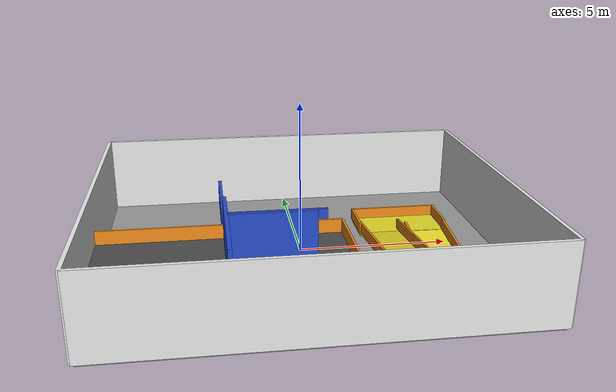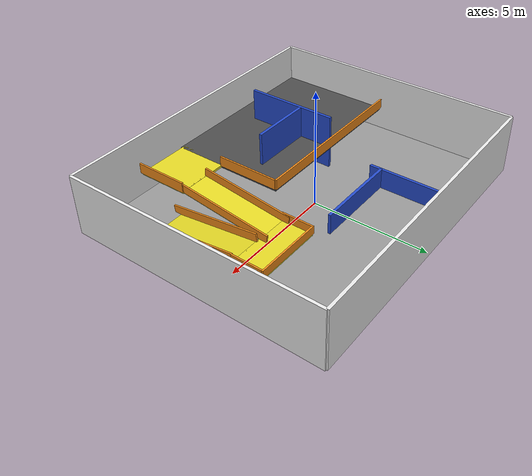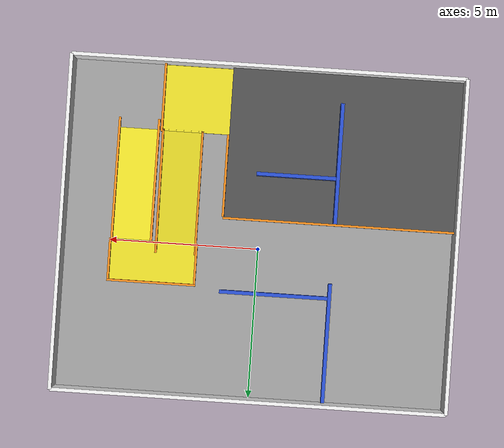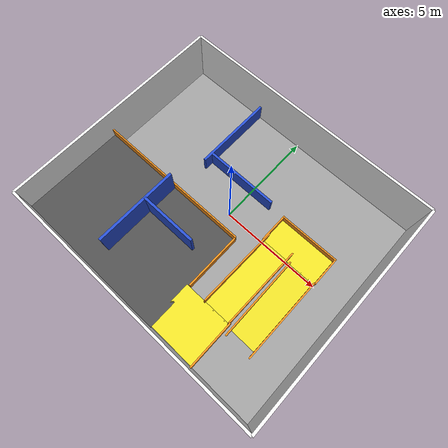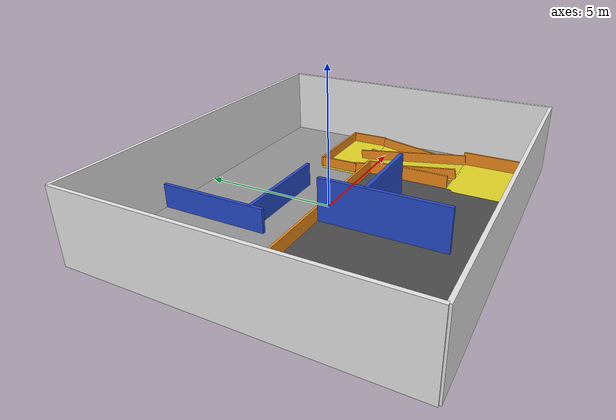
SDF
<sdf version="1.7">
 <world name="two_floor">
  <plugin name="gazebo_ros_state" filename="libgazebo_ros_state.so">
   <ros><namespace>/gazebo</namespace></ros>
  </plugin>
  <gravity>0 0 -9.8</gravity>
  <physics name="ode_physics" type="ode">
   <max_step_size>0.001</max_step_size>
   <real_time_factor>1.0</real_time_factor>
   <real_time_update_rate>1000</real_time_update_rate>
   <ode>
    <solver><type>quick</type><iters>100</iters><sor>1.3</sor></solver>
    <constraints>
     <cfm>0.0</cfm>
     <erp>0.2</erp>
     <contact_max_correcting_vel>10.0</contact_max_correcting_vel>
     <contact_surface_layer>0.001</contact_surface_layer>
    </constraints>
   </ode>
  </physics>
  <scene>
   <ambient>0.48 0.48 0.5 1</ambient>
   <background>0.73 0.77 0.82 1</background>
   <shadows>true</shadows>
  </scene>
  <light name="sun" type="directional">
   <pose>0 0 10 0 0 0</pose>
   <diffuse>0.85 0.85 0.85 1</diffuse>
   <specular>0.2 0.2 0.2 1</specular>
   <direction>-0.45 0.25 -0.86</direction>
   <attenuation>
    <range>1000</range>
    <constant>0.9</constant>
    <linear>0.01</linear>
    <quadratic>0.001</quadratic>
   </attenuation>
  </light>
  <light name="lower_floor_fill" type="point">
   <pose>-2.5 0 0.7 0 0 0</pose>
   <cast_shadows>false</cast_shadows>
   <diffuse>0.55 0.58 0.62 1</diffuse>
   <attenuation>
    <range>12</range>
    <constant>0.5</constant>
    <linear>0.08</linear>
    <quadratic>0.01</quadratic>
   </attenuation>
  </light>
  <light name="upper_floor_fill" type="point">
   <pose>-2.5 -3.5 2.4 0 0 0</pose>
   <cast_shadows>false</cast_shadows>
   <diffuse>0.65 0.67 0.7 1</diffuse>
   <attenuation>
    <range>14</range>
    <constant>0.5</constant>
    <linear>0.07</linear>
    <quadratic>0.01</quadratic>
   </attenuation>
  </light>
  <model name="two_floor_structure">
   <static>true</static>
   <link name="structure_link">
    <collision name="ground_floor_collision">
     <pose>0 -0.5 -0.05 0 0 0</pose>
     <geometry><box><size>13 11 0.1</size></box></geometry>
     <surface><friction><ode><mu>2.0</mu><mu2>2.0</mu2></ode></friction></surface>
    </collision>
    <visual name="ground_floor_visual">
     <pose>0 -0.5 -0.05 0 0 0</pose>
     <geometry><box><size>13 11 0.1</size></box></geometry>
     <material>
      <script><uri>file://media/materials/scripts/gazebo.material</uri><name>Gazebo/Grey</name></script>
     </material>
    </visual>
    <collision name="outer_west_collision">
     <pose>-6.56 -0.5 1.3 0 0 0</pose>
     <geometry><box><size>0.12 11.12 2.6</size></box></geometry>
    </collision>
    <visual name="outer_west_visual">
     <pose>-6.56 -0.5 1.3 0 0 0</pose>
     <geometry><box><size>0.12 11.12 2.6</size></box></geometry>
     <material>
      <script><uri>file://media/materials/scripts/gazebo.material</uri><name>Gazebo/White</name></script>
     </material>
    </visual>
    <collision name="outer_east_collision">
     <pose>6.56 -0.5 1.3 0 0 0</pose>
     <geometry><box><size>0.12 11.12 2.6</size></box></geometry>
    </collision>
    <visual name="outer_east_visual">
     <pose>6.56 -0.5 1.3 0 0 0</pose>
     <geometry><box><size>0.12 11.12 2.6</size></box></geometry>
     <material>
      <script><uri>file://media/materials/scripts/gazebo.material</uri><name>Gazebo/White</name></script>
     </material>
    </visual>
    <collision name="outer_south_collision">
     <pose>0 -6.06 1.3 0 0 0</pose>
     <geometry><box><size>13.12 0.12 2.6</size></box></geometry>
    </collision>
    <visual name="outer_south_visual">
     <pose>0 -6.06 1.3 0 0 0</pose>
     <geometry><box><size>13.12 0.12 2.6</size></box></geometry>
     <material>
      <script><uri>file://media/materials/scripts/gazebo.material</uri><name>Gazebo/White</name></script>
     </material>
    </visual>
    <collision name="outer_north_collision">
     <pose>0 5.06 1.3 0 0 0</pose>
     <geometry><box><size>13.12 0.12 2.6</size></box></geometry>
    </collision>
    <visual name="outer_north_visual">
     <pose>0 5.06 1.3 0 0 0</pose>
     <geometry><box><size>13.12 0.12 2.6</size></box></geometry>
     <material>
      <script><uri>file://media/materials/scripts/gazebo.material</uri><name>Gazebo/White</name></script>
     </material>
    </visual>
    <collision name="upper_floor_collision">
     <pose>-2.65 -3.5 0.94 0 0 0</pose>
     <geometry><box><size>7.7 5.0 0.12</size></box></geometry>
     <surface><friction><ode><mu>2.0</mu><mu2>2.0</mu2></ode></friction></surface>
    </collision>
    <visual name="upper_floor_visual">
     <pose>-2.65 -3.5 0.94 0 0 0</pose>
     <geometry><box><size>7.7 5.0 0.12</size></box></geometry>
     <material>
      <script><uri>file://media/materials/scripts/gazebo.material</uri><name>Gazebo/DarkGrey</name></script>
     </material>
    </visual>
    <collision name="upper_landing_collision">
     <pose>2.235 -4.85 0.95 0 0 0</pose>
     <geometry><box><size>2.37 2.20 0.1</size></box></geometry>
     <surface><friction><ode><mu>4.0</mu><mu2>4.0</mu2></ode></friction></surface>
    </collision>
    <visual name="upper_landing_visual">
     <pose>2.235 -4.85 0.95 0 0 0</pose>
     <geometry><box><size>2.37 2.20 0.1</size></box></geometry>
     <material>
      <script><uri>file://media/materials/scripts/gazebo.material</uri><name>Gazebo/Yellow</name></script>
     </material>
    </visual>
    <collision name="ramp_1_collision">
     <pose>4.25 -2.0435 0.1807 0.1309 0 0</pose>
     <geometry><box><size>1.25 4.1354 0.1</size></box></geometry>
     <surface>
      <contact><ode><kp>1000000</kp><kd>100</kd><min_depth>0.001</min_depth><max_vel>0.1</max_vel></ode></contact>
      <friction><ode><mu>8.0</mu><mu2>8.0</mu2></ode></friction>
     </surface>
    </collision>
    <visual name="ramp_1_visual">
     <pose>4.25 -2.0435 0.1807 0.1309 0 0</pose>
     <geometry><box><size>1.25 4.1354 0.1</size></box></geometry>
     <material>
      <script><uri>file://media/materials/scripts/gazebo.material</uri><name>Gazebo/Yellow</name></script>
     </material>
    </visual>
    <collision name="ramp_2_collision">
     <pose>2.75 -1.7565 0.6807 -0.1309 0 0</pose>
     <geometry><box><size>1.25 4.1354 0.1</size></box></geometry>
     <surface>
      <contact><ode><kp>1000000</kp><kd>100</kd><min_depth>0.001</min_depth><max_vel>0.1</max_vel></ode></contact>
      <friction><ode><mu>8.0</mu><mu2>8.0</mu2></ode></friction>
     </surface>
    </collision>
    <visual name="ramp_2_visual">
     <pose>2.75 -1.7565 0.6807 -0.1309 0 0</pose>
     <geometry><box><size>1.25 4.1354 0.1</size></box></geometry>
     <material>
      <script><uri>file://media/materials/scripts/gazebo.material</uri><name>Gazebo/Yellow</name></script>
     </material>
    </visual>
    <collision name="middle_landing_collision">
     <pose>3.5 0.65 0.45 0 0 0</pose>
     <geometry><box><size>2.9 1.4 0.1</size></box></geometry>
     <surface><friction><ode><mu>4.0</mu><mu2>4.0</mu2></ode></friction></surface>
    </collision>
    <visual name="middle_landing_visual">
     <pose>3.5 0.65 0.45 0 0 0</pose>
     <geometry><box><size>2.9 1.4 0.1</size></box></geometry>
     <material>
      <script><uri>file://media/materials/scripts/gazebo.material</uri><name>Gazebo/Yellow</name></script>
     </material>
    </visual>
    <collision name="ramp_1_west_rail_collision">
     <pose>3.59 -2.066 0.4038 0.1309 0 0</pose>
     <geometry><box><size>0.07 4.1354 0.35</size></box></geometry>
    </collision>
    <visual name="ramp_1_west_rail_visual">
     <pose>3.59 -2.066 0.4038 0.1309 0 0</pose>
     <geometry><box><size>0.07 4.1354 0.35</size></box></geometry>
     <material>
      <script><uri>file://media/materials/scripts/gazebo.material</uri><name>Gazebo/Orange</name></script>
     </material>
    </visual>
    <collision name="ramp_1_east_rail_collision">
     <pose>4.91 -2.066 0.4038 0.1309 0 0</pose>
     <geometry><box><size>0.07 4.1354 0.35</size></box></geometry>
    </collision>
    <visual name="ramp_1_east_rail_visual">
     <pose>4.91 -2.066 0.4038 0.1309 0 0</pose>
     <geometry><box><size>0.07 4.1354 0.35</size></box></geometry>
     <material>
      <script><uri>file://media/materials/scripts/gazebo.material</uri><name>Gazebo/Orange</name></script>
     </material>
    </visual>
    <collision name="ramp_2_west_rail_collision">
     <pose>2.09 -1.734 0.9038 -0.1309 0 0</pose>
     <geometry><box><size>0.07 4.1354 0.35</size></box></geometry>
    </collision>
    <visual name="ramp_2_west_rail_visual">
     <pose>2.09 -1.734 0.9038 -0.1309 0 0</pose>
     <geometry><box><size>0.07 4.1354 0.35</size></box></geometry>
     <material>
      <script><uri>file://media/materials/scripts/gazebo.material</uri><name>Gazebo/Orange</name></script>
     </material>
    </visual>
    <collision name="ramp_2_east_rail_collision">
     <pose>3.41 -1.734 0.9038 -0.1309 0 0</pose>
     <geometry><box><size>0.07 4.1354 0.35</size></box></geometry>
    </collision>
    <visual name="ramp_2_east_rail_visual">
     <pose>3.41 -1.734 0.9038 -0.1309 0 0</pose>
     <geometry><box><size>0.07 4.1354 0.35</size></box></geometry>
     <material>
      <script><uri>file://media/materials/scripts/gazebo.material</uri><name>Gazebo/Orange</name></script>
     </material>
    </visual>
    <collision name="middle_north_rail_collision">
     <pose>3.5 1.35 0.675 0 0 0</pose>
     <geometry><box><size>2.97 0.07 0.35</size></box></geometry>
    </collision>
    <visual name="middle_north_rail_visual">
     <pose>3.5 1.35 0.675 0 0 0</pose>
     <geometry><box><size>2.97 0.07 0.35</size></box></geometry>
     <material>
      <script><uri>file://media/materials/scripts/gazebo.material</uri><name>Gazebo/Orange</name></script>
     </material>
    </visual>
    <collision name="middle_east_rail_collision">
     <pose>4.95 0.65 0.675 0 0 0</pose>
     <geometry><box><size>0.07 1.4 0.35</size></box></geometry>
    </collision>
    <visual name="middle_east_rail_visual">
     <pose>4.95 0.65 0.675 0 0 0</pose>
     <geometry><box><size>0.07 1.4 0.35</size></box></geometry>
     <material>
      <script><uri>file://media/materials/scripts/gazebo.material</uri><name>Gazebo/Orange</name></script>
     </material>
    </visual>
    <collision name="middle_west_rail_collision">
     <pose>2.05 0.65 0.675 0 0 0</pose>
     <geometry><box><size>0.07 1.4 0.35</size></box></geometry>
    </collision>
    <visual name="middle_west_rail_visual">
     <pose>2.05 0.65 0.675 0 0 0</pose>
     <geometry><box><size>0.07 1.4 0.35</size></box></geometry>
     <material>
      <script><uri>file://media/materials/scripts/gazebo.material</uri><name>Gazebo/Orange</name></script>
     </material>
    </visual>
    <collision name="upper_edge_rail_collision">
     <pose>1.235 -2.375 1.225 0 0 0</pose>
     <geometry><box><size>0.07 2.75 0.45</size></box></geometry>
    </collision>
    <visual name="upper_edge_rail_visual">
     <pose>1.235 -2.375 1.225 0 0 0</pose>
     <geometry><box><size>0.07 2.75 0.45</size></box></geometry>
     <material>
      <script><uri>file://media/materials/scripts/gazebo.material</uri><name>Gazebo/Orange</name></script>
     </material>
    </visual>
    <collision name="upper_north_edge_rail_collision">
     <pose>-2.65 -0.965 1.225 0 0 0</pose>
     <geometry><box><size>7.77 0.07 0.45</size></box></geometry>
    </collision>
    <visual name="upper_north_edge_rail_visual">
     <pose>-2.65 -0.965 1.225 0 0 0</pose>
     <geometry><box><size>7.77 0.07 0.45</size></box></geometry>
     <material>
      <script><uri>file://media/materials/scripts/gazebo.material</uri><name>Gazebo/Orange</name></script>
     </material>
    </visual>
    <collision name="upper_landing_east_rail_collision">
     <pose>3.455 -4.85 1.225 0 0 0</pose>
     <geometry><box><size>0.07 2.27 0.45</size></box></geometry>
    </collision>
    <visual name="upper_landing_east_rail_visual">
     <pose>3.455 -4.85 1.225 0 0 0</pose>
     <geometry><box><size>0.07 2.27 0.45</size></box></geometry>
     <material>
      <script><uri>file://media/materials/scripts/gazebo.material</uri><name>Gazebo/Orange</name></script>
     </material>
    </visual>
    <collision name="lower_partition_south_collision">
     <pose>-2.5 -3.0 0.44 0 0 0</pose>
     <geometry><box><size>0.12 4.0 0.88</size></box></geometry>
    </collision>
    <visual name="lower_partition_south_visual">
     <pose>-2.5 -3.0 0.44 0 0 0</pose>
     <geometry><box><size>0.12 4.0 0.88</size></box></geometry>
     <material>
      <script><uri>file://media/materials/scripts/gazebo.material</uri><name>Gazebo/Blue</name></script>
     </material>
    </visual>
    <collision name="lower_partition_north_collision">
     <pose>-2.5 3.0 0.44 0 0 0</pose>
     <geometry><box><size>0.12 4.0 0.88</size></box></geometry>
    </collision>
    <visual name="lower_partition_north_visual">
     <pose>-2.5 3.0 0.44 0 0 0</pose>
     <geometry><box><size>0.12 4.0 0.88</size></box></geometry>
     <material>
      <script><uri>file://media/materials/scripts/gazebo.material</uri><name>Gazebo/Blue</name></script>
     </material>
    </visual>
    <collision name="lower_partition_cross_collision">
     <pose>-0.65 1.5 0.44 0 0 0</pose>
     <geometry><box><size>3.7 0.12 0.88</size></box></geometry>
    </collision>
    <visual name="lower_partition_cross_visual">
     <pose>-0.65 1.5 0.44 0 0 0</pose>
     <geometry><box><size>3.7 0.12 0.88</size></box></geometry>
     <material>
      <script><uri>file://media/materials/scripts/gazebo.material</uri><name>Gazebo/Blue</name></script>
     </material>
    </visual>
    <collision name="upper_partition_south_collision">
     <pose>-2.5 -3.0 1.7 0 0 0</pose>
     <geometry><box><size>0.12 4.0 1.4</size></box></geometry>
    </collision>
    <visual name="upper_partition_south_visual">
     <pose>-2.5 -3.0 1.7 0 0 0</pose>
     <geometry><box><size>0.12 4.0 1.4</size></box></geometry>
     <material>
      <script><uri>file://media/materials/scripts/gazebo.material</uri><name>Gazebo/Blue</name></script>
     </material>
    </visual>
    <collision name="upper_partition_cross_collision">
     <pose>-1.15 -2.5 1.7 0 0 0</pose>
     <geometry><box><size>2.7 0.12 1.4</size></box></geometry>
    </collision>
    <visual name="upper_partition_cross_visual">
     <pose>-1.15 -2.5 1.7 0 0 0</pose>
     <geometry><box><size>2.7 0.12 1.4</size></box></geometry>
     <material>
      <script><uri>file://media/materials/scripts/gazebo.material</uri><name>Gazebo/Blue</name></script>
     </material>
    </visual>
   </link>
  </model>
 </world>
</sdf>
